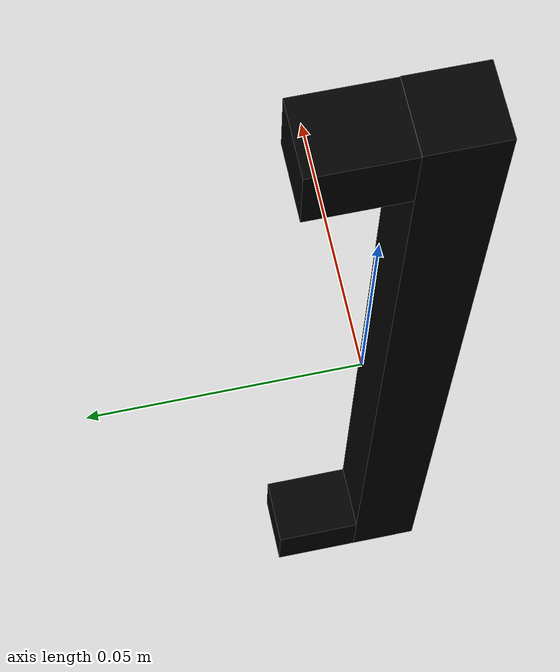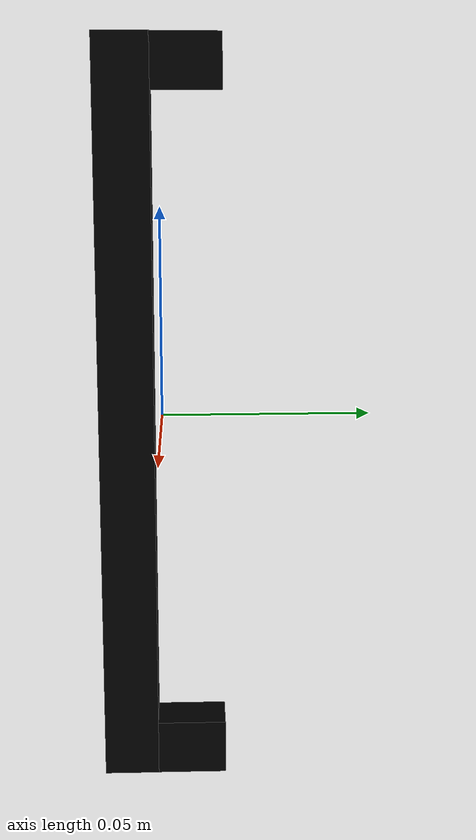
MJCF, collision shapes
<?xml version="1.0" ?>
<mujoco model="model">
    <compiler angle="radian"/>
    <asset>
        <mesh file="visuals/CabinetHandle032.obj" name="mesh"/>
        <texture file="visuals/T_BC001.png" name="tex" type="2d"/>
        <material name="mat" rgba="1 1 1 1.0" texture="tex" shininess="0.10000002384185791" specular="0.33333333333333337"/>
    </asset>
    <default>
        <default class="visual">
            <geom conaffinity="0" contype="0" group="1" type="mesh"/>
        </default>
        <default class="collision">
            <geom group="0" rgba="0 0 0 0"/>
        </default>
        <default class="spawn">
            <geom group="0" rgba="0 0 0 0" contype="0" conaffinity="0"/>
            <site group="0" rgba="0 0 0 0"/>
        </default>
    </default>
    <worldbody>
        <body>
            <body name="object">
                <geom mesh="mesh" type="mesh" solimp="0.998 0.998 0.001" solref="0.001 1" density="100" friction="0.95 0.3 0.1" class="visual" material="mat"/>
                <geom class="collision" type="box" pos="-6.586041854461655e-05 -0.008440590463578701 9.511253301752731e-05" size="0.006420152261853218 0.006614526268094778 0.0902833640575409" quat="1.0 0.0 0.0 0.0"/>
                <geom class="collision" type="box" pos="-6.586041854461655e-05 0.006474609952419996 -0.08359172195196152" size="0.006420152261853218 0.008370177820324898 0.006552256178110838" quat="1.0 0.0 0.0 0.0" name="handle_connector"/>
                <geom class="collision" type="box" pos="-6.586041854461655e-05 0.006416392512619495 0.08363887667655945" size="0.006420152261853218 0.008370177820324898 0.006552256178110838" quat="1.0 0.0 0.0 0.0"/>
            </body>
        </body>
    </worldbody>
    <actuator/>
</mujoco>
